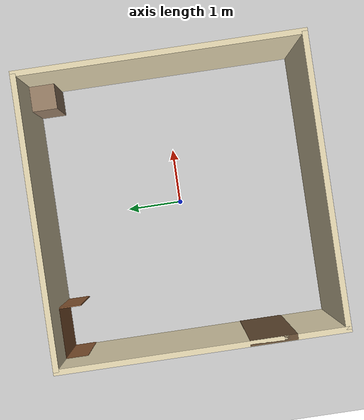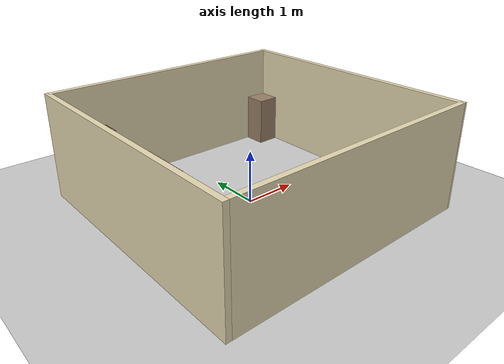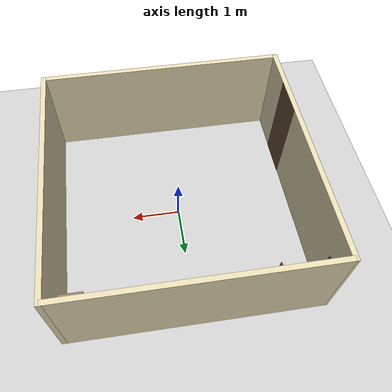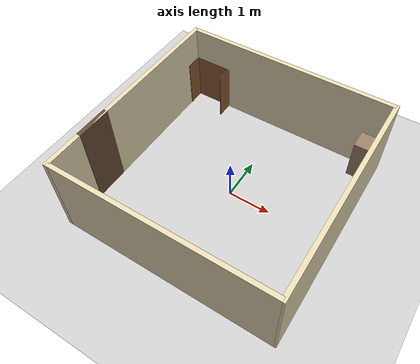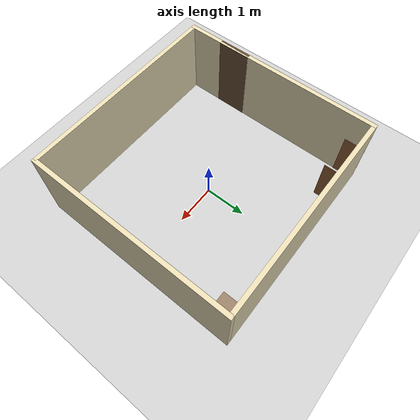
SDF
<sdf version="1.7">
 <world name="default">
  <plugin filename="gz-sim-physics-system" name="gz::sim::systems::Physics"/>
  <plugin filename="gz-sim-user-commands-system" name="gz::sim::systems::UserCommands"/>
  <plugin filename="gz-sim-scene-broadcaster-system" name="gz::sim::systems::SceneBroadcaster"/>
  <plugin filename="gz-sim-sensors-system" name="gz::sim::systems::Sensors">
   <render_engine>ogre2</render_engine>
  </plugin>
  <light name="sun" type="directional">
   <pose>0 0 10 0 -0 0</pose>
   <diffuse>0.8 0.8 0.8 1</diffuse>
   <specular>0.2 0.2 0.2 1</specular>
   <attenuation>
    <range>1000</range>
    <constant>0.9</constant>
    <linear>0.01</linear>
    <quadratic>0.001</quadratic>
   </attenuation>
   <direction>-0.5 0.1 -0.9</direction>
  </light>
  <model name="ground_plane">
   <static>1</static>
   <link name="link">
    <collision name="collision">
     <geometry><plane><normal>0 0 1</normal><size>20 20</size></plane></geometry>
    </collision>
    <visual name="visual">
     <geometry><plane><normal>0 0 1</normal><size>20 20</size></plane></geometry>
     <material><ambient>0.8 0.8 0.8 1</ambient><diffuse>0.8 0.8 0.8 1</diffuse></material>
    </visual>
   </link>
  </model>
  <model name="room_wall_2x5">
   <static>1</static>
   <pose>-2.5 0 1 0 -0 0</pose>
   <link name="link">
    <visual name="visual">
     <geometry><box><size>0.1 5 2</size></box></geometry>
     <material><ambient>0.9 0.85 0.7 1</ambient><diffuse>0.9 0.85 0.7 1</diffuse></material>
    </visual>
    <collision name="collision"><geometry><box><size>0.1 5 2</size></box></geometry></collision>
   </link>
  </model>
  <model name="room_wall_2x5_0">
   <static>1</static>
   <pose>2.5 0 1 0 -0 0</pose>
   <link name="link">
    <visual name="visual">
     <geometry><box><size>0.1 5 2</size></box></geometry>
     <material><ambient>0.9 0.85 0.7 1</ambient><diffuse>0.9 0.85 0.7 1</diffuse></material>
    </visual>
    <collision name="collision"><geometry><box><size>0.1 5 2</size></box></geometry></collision>
   </link>
  </model>
  <model name="room_wall_2x5_1">
   <static>1</static>
   <pose>0 -2.45 1 0 -0 1.5707</pose>
   <link name="link">
    <visual name="visual">
     <geometry><box><size>0.1 5 2</size></box></geometry>
     <material><ambient>0.9 0.85 0.7 1</ambient><diffuse>0.9 0.85 0.7 1</diffuse></material>
    </visual>
    <collision name="collision"><geometry><box><size>0.1 5 2</size></box></geometry></collision>
   </link>
  </model>
  <model name="room_wall_2x5_2">
   <static>1</static>
   <pose>0 2.45 1 0 -0 1.5707</pose>
   <link name="link">
    <visual name="visual">
     <geometry><box><size>0.1 5 2</size></box></geometry>
     <material><ambient>0.9 0.85 0.7 1</ambient><diffuse>0.9 0.85 0.7 1</diffuse></material>
    </visual>
    <collision name="collision"><geometry><box><size>0.1 5 2</size></box></geometry></collision>
   </link>
  </model>
  <model name="Bookshelf">
   <static>1</static>
   <pose>-2 2.4 0 0 -0 0</pose>
   <link name="link">
    <collision name="back">
     <pose>0 0.005 0.6 0 -0 0</pose>
     <geometry><box><size>0.9 0.01 1.2</size></box></geometry>
    </collision>
    <visual name="back_visual">
     <pose>0 0.005 0.6 0 -0 0</pose>
     <geometry><box><size>0.9 0.01 1.2</size></box></geometry>
     <material><ambient>0.55 0.35 0.2 1</ambient><diffuse>0.55 0.35 0.2 1</diffuse></material>
    </visual>
    <collision name="left_side">
     <pose>0.45 -0.195 0.6 0 -0 0</pose>
     <geometry><box><size>0.02 0.4 1.2</size></box></geometry>
    </collision>
    <visual name="left_side_visual">
     <pose>0.45 -0.195 0.6 0 -0 0</pose>
     <geometry><box><size>0.02 0.4 1.2</size></box></geometry>
     <material><ambient>0.55 0.35 0.2 1</ambient><diffuse>0.55 0.35 0.2 1</diffuse></material>
    </visual>
    <collision name="right_side">
     <pose>-0.45 -0.195 0.6 0 -0 0</pose>
     <geometry><box><size>0.02 0.4 1.2</size></box></geometry>
    </collision>
    <visual name="right_side_visual">
     <pose>-0.45 -0.195 0.6 0 -0 0</pose>
     <geometry><box><size>0.02 0.4 1.2</size></box></geometry>
     <material><ambient>0.55 0.35 0.2 1</ambient><diffuse>0.55 0.35 0.2 1</diffuse></material>
    </visual>
   </link>
  </model>
  <model name="cabinet">
   <static>1</static>
   <pose>2.21 2.17 0 0 -0 1.5707</pose>
   <link name="cabinet_bottom_plate">
    <collision name="box">
     <pose>0 0 0.5 0 -0 0</pose>
     <geometry><box><size>0.45 0.45 1.0</size></box></geometry>
    </collision>
    <visual name="box_visual">
     <pose>0 0 0.5 0 -0 0</pose>
     <geometry><box><size>0.45 0.45 1.0</size></box></geometry>
     <material><ambient>0.6 0.5 0.4 1</ambient><diffuse>0.6 0.5 0.4 1</diffuse></material>
    </visual>
   </link>
  </model>
  <model name="door_08x2m_0">
   <static>1</static>
   <pose>-2.495 -1.2 1 0 -0 0</pose>
   <link name="link">
    <visual name="visual">
     <geometry><box><size>0.1 0.8 2</size></box></geometry>
     <material><ambient>0.4 0.3 0.2 1</ambient><diffuse>0.4 0.3 0.2 1</diffuse></material>
    </visual>
    <collision name="collision"><geometry><box><size>0.1 0.8 2</size></box></geometry></collision>
   </link>
  </model>
 </world>
</sdf>
